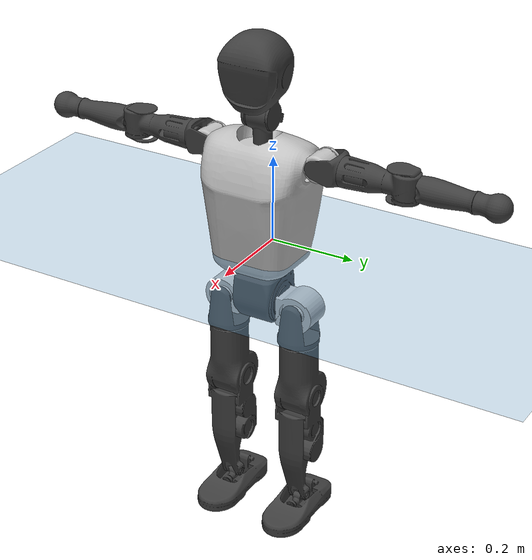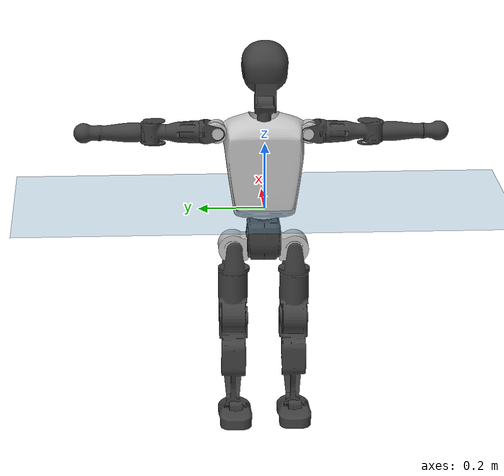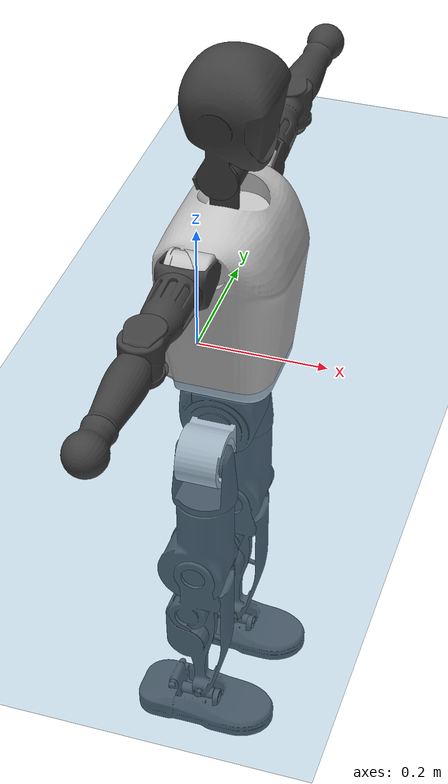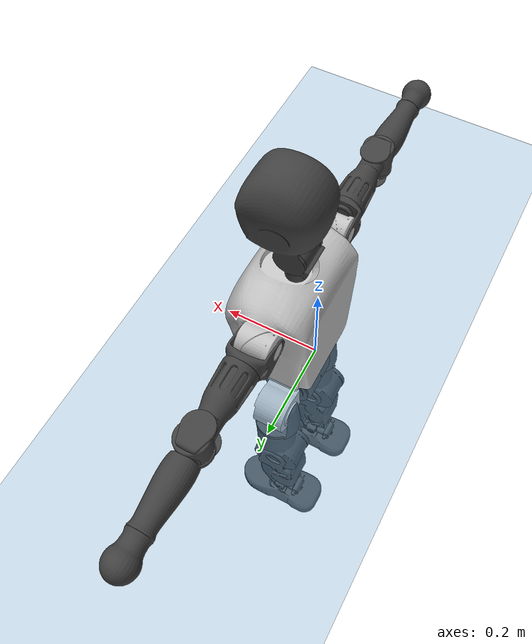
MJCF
<mujoco model="T1">
  <compiler angle="radian" assetdir="assets" balanceinertia="true" inertiafromgeom="false"/>

  <option timestep="0.005" density="1.2" viscosity="2e-05"/>

  <size nkey="1"/>

  <visual>
    <quality shadowsize="8192"/>
    <map shadowclip="0.5"/>
  </visual>

  <default>
    <default class="/">
      <joint armature="0.01" damping="0.01" frictionloss="0.1"/>
      <geom contype="0" conaffinity="0" group="1" solref="-1000 -80"/>
      <site size="0.01 0.005 0.005" group="5"/>
      <general forcelimited="true" biastype="affine" gainprm="25" biasprm="0 -25 -0.6"/>
      <default class="t1">
        <geom rgba="0.25 0.25 0.25 1"/>
        <default class="visual">
          <geom type="mesh" group="2"/>
        </default>
        <default class="collision">
          <geom group="3"/>
        </default>
        <default class="foot">
          <geom size="0.1115 0.05 0.015" type="box" condim="6" group="4" priority="1" solimp="0.015 1 0.015"/>
        </default>
        <default class="reward_collision_sphere">
          <geom group="5" rgba="1 0 0 1"/>
        </default>
      </default>
    </default>
  </default>

  <asset>
    <texture type="skybox" colorspace="auto" name="//unnamed_texture_0" builtin="gradient" rgb1="0.95 0.95 0.95" rgb2="0.95 0.95 0.95" width="100" height="600"/>
    <texture type="2d" colorspace="auto" name="texplane" builtin="checker" rgb1="0.345 0.575 0.748" rgb2="0.345 0.575 0.748" markrgb="1 1 1" width="512" height="512"/>
    <material name="MatPlane" class="/" texture="texplane" texuniform="true" texrepeat="2 2" specular="0.9"/>
    <mesh name="Trunk" class="/" file="Trunk.stl"/>
    <mesh name="H1" class="/" file="H1.stl"/>
    <mesh name="H2" class="/" file="H2.stl"/>
    <mesh name="AL1" class="/" file="AL1.stl"/>
    <mesh name="AL2" class="/" file="AL2.stl"/>
    <mesh name="AL3" class="/" file="AL3.stl"/>
    <mesh name="left_hand_link" class="/" file="left_hand_link.stl"/>
    <mesh name="AR1" class="/" file="AR1.stl"/>
    <mesh name="AR2" class="/" file="AR2.stl"/>
    <mesh name="AR3" class="/" file="AR3.stl"/>
    <mesh name="right_hand_link" class="/" file="right_hand_link.stl"/>
    <mesh name="Waist" class="/" file="Waist.stl"/>
    <mesh name="Hip_Pitch_Left" class="/" file="Hip_Pitch_Left.stl"/>
    <mesh name="Hip_Roll_Left" class="/" file="Hip_Roll_Left.stl"/>
    <mesh name="Hip_Yaw_Left" class="/" file="Hip_Yaw_Left.stl"/>
    <mesh name="Shank_Left" class="/" file="Shank_Left.stl"/>
    <mesh name="Ankle_Cross_Left" class="/" file="Ankle_Cross_Left.stl"/>
    <mesh name="left_foot_link" class="/" file="left_foot_link.stl"/>
    <mesh name="Hip_Pitch_Right" class="/" file="Hip_Pitch_Right.stl"/>
    <mesh name="Hip_Roll_Right" class="/" file="Hip_Roll_Right.stl"/>
    <mesh name="Hip_Yaw_Right" class="/" file="Hip_Yaw_Right.stl"/>
    <mesh name="Shank_Right" class="/" file="Shank_Right.stl"/>
    <mesh name="Ankle_Cross_Right" class="/" file="Ankle_Cross_Right.stl"/>
    <mesh name="right_foot_link" class="/" file="right_foot_link.stl"/>
  </asset>

  <worldbody>
    <geom name="floor" class="/" size="100 100 0.125" type="plane" group="0" material="MatPlane"/>
    <light name="toplight_shadow" class="/" pos="0 0 5" dir="0.0990148 0.0990148 -0.990148" type="directional" ambient="0.04 0.04 0.04" diffuse="0.55 0.55 0.55" specular="0.12 0.12 0.12"/>
    <light name="toplight_fill" class="/" pos="0 0 5" dir="0.0990148 0.0990148 -0.990148" type="directional" castshadow="false" ambient="0.04 0.04 0.04" diffuse="0.3 0.3 0.3" specular="0.08 0.08 0.08"/>
    <body name="trunk" childclass="t1" pos="-0.000985147 0.000552589 0.00281247" quat="1 0.000659969 0.000739227 0.000116035">
      <inertial pos="0.035203 -0.00284057 0.109879" quat="0.999965 0.00149109 -0.00797116 0.00186551" mass="7.34975" diaginertia="0.0159147 0.0372976 0.0645456"/>
      <joint name="//unnamed_joint_0" type="free" armature="0" damping="0" frictionloss="0"/>
      <geom name="//unnamed_geom_1" class="visual" rgba="0.76 0.76 0.76 1" mesh="Trunk"/>
      <geom name="//unnamed_geom_2" class="collision" size="0.0647953 0.0863937 0.129591" pos="0.0419514 0 0.123206" type="box"/>
      <geom name="//unnamed_geom_3" class="reward_collision_sphere" size="0.0993528" pos="0.0419514 0 0.102672"/>
      <geom name="//unnamed_geom_4" class="reward_collision_sphere" size="0.0129591" pos="0.0419514 0.0736017 0"/>
      <geom name="//unnamed_geom_5" class="reward_collision_sphere" size="0.0129591" pos="0.0419514 -0.0736017 0"/>
      <geom name="//unnamed_geom_6" class="reward_collision_sphere" size="0.0129591" pos="0.0419514 0.0926516 0.184809"/>
      <geom name="//unnamed_geom_7" class="reward_collision_sphere" size="0.0129591" pos="0.0419514 -0.0926516 0.184809"/>
      <site name="imu" pos="-0.00687623 0.0057642 -0.00750284" size="0.00863937"/>
      <camera name="track" pos="0 -1.7318 0" quat="0.707107 0.707107 0 0" mode="trackcom"/>
      <camera name="ego_camera" pos="0.0853012 0 0.431222" quat="-0.5 -0.5 0.5 0.5"/>
      <body name="H1" pos="0.0433534 -0.000653936 0.247619" quat="1 0.000607385 0.000254691 0.00050602">
        <inertial pos="-0.000834908 -0.00247491 0.0606737" quat="0.764312 -0.0143573 0.00296245 0.64468" mass="0.296695" diaginertia="4.00901e-05 0.000113683 0.000174459"/>
        <joint name="AAHead_yaw" pos="0 0 0" axis="0.00192248 -0.0133926 0.999908" range="-1.57642 1.58073" armature="0.00931137" damping="0.00131536" frictionloss="0.0870018"/>
        <geom name="//unnamed_geom_8" class="visual" mesh="H1"/>
        <body name="H2" pos="0.000160887 -0.00300556 0.0633012" quat="0.999999 -0.00124375 0.000170295 0.000400112">
          <inertial pos="0.00543595 -0.000186623 0.102268" quat="0.988415 0.106183 -0.0747367 -0.0785796" mass="0.40483" diaginertia="0.00033978 0.000953705 0.00204813"/>
          <joint name="Head_pitch" pos="0 0 0" axis="0.00462112 -0.999902 -0.0132163" stiffness="0.00943118" range="-1.22208 0.294385" armature="0.00965088" damping="0" frictionloss="0.0893916"/>
          <geom name="//unnamed_geom_9" class="visual" mesh="H2"/>
          <geom name="//unnamed_geom_10" class="collision" size="0.069115" pos="0.0069919 0 0.112939"/>
          <geom name="//unnamed_geom_11" class="reward_collision_sphere" size="0.0777543" pos="0.0139838 0 0.102672"/>
        </body>
      </body>
      <body name="AL1" pos="0.0418472 0.0952936 0.226714" quat="0.999999 -0.000883668 0.00143215 -0.000376202">
        <inertial pos="-0.0011213 0.041222 -0.000335503" quat="0.504616 0.49641 -0.503115 0.495798" mass="0.338086" diaginertia="0.00023705 0.000615218 0.000325872"/>
        <joint name="Left_Shoulder_Pitch" pos="0 0 0" axis="-0.000413879 0.999986 0.00526571" range="-3.25893 1.23907" armature="0.00805371" damping="0.00296853" frictionloss="0.0740735"/>
        <geom name="//unnamed_geom_12" class="visual" rgba="0.76 0.76 0.76 1" mesh="AL1"/>
        <body name="AL2" pos="-0.00201522 0.0443712 -0.000124834" quat="1 -0.000193393 4.71054e-05 0.000182142">
          <inertial pos="0.00180512 0.0320118 0.00183928" quat="0.485021 0.513217 -0.486304 0.514657" mass="0.109534" diaginertia="6.89141e-05 0.000170024 0.000215661"/>
          <joint name="Left_Shoulder_Roll" pos="0 0 0" axis="-0.999998 0.00120809 -0.00162584" stiffness="0.0103324" range="-1.54111 1.77073" armature="0.00811183" damping="0" frictionloss="0.085051"/>
          <geom name="//unnamed_geom_13" class="visual" mesh="AL2"/>
          <body name="AL3" pos="0.00334895 0.0538199 -0.00109462" quat="1 -0.000181846 -0.000421753 -0.000143621">
            <inertial pos="0.00252904 0.0740411 8.71932e-05" quat="0.705213 0.708875 0.0127919 0.00276728" mass="0.648004" diaginertia="0.00203228 0.00631328 0.000685432"/>
            <joint name="Left_Elbow_Pitch" pos="0 0 0" axis="-0.00267164 -0.999993 -0.00257288" stiffness="0.000216122" range="-2.24537 2.31959" armature="0.00841823" damping="0.0173913" frictionloss="0.0745348"/>
            <geom name="//unnamed_geom_14" class="visual" mesh="AL3"/>
            <geom name="//unnamed_geom_15" class="collision" size="0.0259181 0.0647953" pos="0 0.0432951 0" quat="0.707105 0.707108 0 0" type="cylinder"/>
            <geom name="//unnamed_geom_16" class="reward_collision_sphere" size="0.0311017"/>
            <body name="left_hand_link" pos="-0.0022591 0.130288 0.00164479" quat="0.999999 -0.000920524 -0.000532857 -0.000645468">
              <inertial pos="0.00101129 0.094782 0.00313305" quat="0.707902 0.70631 -0.000554694 -0.000547456" mass="0.212878" diaginertia="0.00142238 0.00411686 0.000250187"/>
              <joint name="Left_Elbow_Yaw" pos="0 0 0" axis="-0.00551649 -0.0091683 0.999943" range="-2.49381 -0.0184978" armature="0.00935042" damping="0.00669107" frictionloss="0.0742035"/>
              <geom name="//unnamed_geom_17" class="visual" mesh="left_hand_link"/>
              <geom name="//unnamed_geom_18" class="collision" size="0.0259181 0.0755945" pos="0 0.112567 0" quat="0.707105 0.707108 0 0" type="cylinder"/>
              <geom name="//unnamed_geom_19" class="reward_collision_sphere" size="0.0431968"/>
              <geom name="//unnamed_geom_20" class="reward_collision_sphere" size="0.0302378" pos="0 0.0952493 0"/>
              <geom name="//unnamed_geom_21" class="reward_collision_sphere" size="0.0302378" pos="0 0.186169 0"/>
            </body>
          </body>
        </body>
      </body>
      <body name="AR1" pos="0.0376636 -0.0879205 0.223986" quat="1 0.000271852 3.48515e-05 0.000291602">
        <inertial pos="-0.00224823 -0.0372929 0.00263061" quat="0.507098 0.495766 -0.502887 0.494138" mass="0.349632" diaginertia="0.000218566 0.000602168 0.000336013"/>
        <joint name="Right_Shoulder_Pitch" pos="0 0 0" axis="0.00350075 -0.99999 -0.00286659" stiffness="0.00311323" range="-1.22052 3.31549" armature="0.00827748" damping="0.01207" frictionloss="0.0744459"/>
        <geom name="//unnamed_geom_22" class="visual" rgba="0.76 0.76 0.76 1" mesh="AR1"/>
        <body name="AR2" pos="-0.00142986 -0.0411833 0.000189632" quat="1 -0.000168688 0.000610381 -6.07601e-05">
          <inertial pos="0.00436265 -0.0334527 0.00311496" quat="0.511281 0.489048 -0.512114 0.486994" mass="0.104621" diaginertia="6.62149e-05 0.000172413 0.000208777"/>
          <joint name="Right_Shoulder_Roll" pos="0 0 0" axis="-0.999814 0.0166235 0.00974551" range="-1.68365 1.59366" armature="0.00761669" damping="0.0197599" frictionloss="0.0850774"/>
          <geom name="//unnamed_geom_23" class="visual" mesh="AR2"/>
          <body name="AR3" pos="0.000504309 -0.0527053 -0.000983594" quat="1 7.4158e-05 9.14777e-05 2.03548e-05">
            <inertial pos="-0.000876386 -0.0754841 0.00243221" quat="0.701279 0.712818 0.00150787 0.00984214" mass="0.667947" diaginertia="0.00223473 0.00605622 0.000735512"/>
            <joint name="Right_Elbow_Pitch" pos="0 0 0" axis="-0.0030808 0.99991 -0.01302" stiffness="0.00405964" range="-2.21428 2.21603" armature="0.00874447" damping="0.0197076" frictionloss="0.0854407"/>
            <geom name="//unnamed_geom_24" class="visual" mesh="AR3"/>
            <geom name="//unnamed_geom_25" class="collision" size="0.0259181 0.0647953" pos="0 -0.0432951 0" quat="0.707105 0.707108 0 0" type="cylinder"/>
            <geom name="//unnamed_geom_26" class="reward_collision_sphere" size="0.0311017"/>
            <body name="right_hand_link" pos="-0.000264716 -0.127515 -0.00141133" quat="0.999999 0.000928365 0.00083407 0.000225258">
              <inertial pos="-0.000114479 -0.0948022 -0.00185307" quat="0.708173 0.706029 -0.00292211 0.00250789" mass="0.206247" diaginertia="0.0013784 0.00395489 0.000237025"/>
              <joint name="Right_Elbow_Yaw" pos="0 0 0" axis="-0.000540184 0.00110782 0.999999" stiffness="0.000406018" range="-0.00960281 2.43195" armature="0.00826328" damping="0" frictionloss="0.0985117"/>
              <geom name="//unnamed_geom_27" class="visual" mesh="right_hand_link"/>
              <geom name="//unnamed_geom_28" class="collision" size="0.0259181 0.0755945" pos="0 -0.112567 0" quat="0.707105 0.707108 0 0" type="cylinder"/>
              <geom name="//unnamed_geom_29" class="reward_collision_sphere" size="0.0431968"/>
              <geom name="//unnamed_geom_30" class="reward_collision_sphere" size="0.0302378" pos="0 -0.0952493 0"/>
              <geom name="//unnamed_geom_31" class="reward_collision_sphere" size="0.0302378" pos="0 -0.186169 0"/>
            </body>
          </body>
        </body>
      </body>
      <body name="Waist" pos="0.043861 0.00104163 -0.11838" quat="0.999999 0.000669594 -0.000601273 -0.000958743">
        <inertial pos="0.00102144 0.0020868 0.00773316" quat="0.984204 -0.000882297 -0.176946 0.0056468" mass="1.59975" diaginertia="0.000867184 0.0024922 0.00546581"/>
        <joint name="Waist" pos="0 0 0" axis="-0.00192336 0.00361652 0.999992" stiffness="0.00771427" range="-1.53647 1.5369" armature="0.00751455" damping="0.016442" frictionloss="0.0864435"/>
        <geom name="//unnamed_geom_32" class="visual" mesh="Waist"/>
        <body name="Hip_Pitch_Left" pos="-0.000525633 0.0937959 0.00248742" quat="1 0.00025047 -6.98223e-05 -4.9701e-05">
          <inertial pos="-0.00220041 -0.00518484 -0.0176502" quat="0.975105 0.221004 0.0174901 0.00473239" mass="0.670251" diaginertia="0.000297881 0.000692754 0.00143282"/>
          <joint name="Left_Hip_Pitch" pos="0 0 0" axis="-0.000222748 1 0.000275847" range="-1.82375 1.55703" armature="0.00741525" damping="0.0158881" frictionloss="0.0910379"/>
          <geom name="//unnamed_geom_33" class="visual" rgba="0.76 0.76 0.76 1" mesh="Hip_Pitch_Left"/>
          <body name="Hip_Roll_Left" pos="0.00159774 -0.00342269 -0.021272" quat="1 1.4143e-05 -0.000207103 -1.05785e-05">
            <inertial pos="0.00350612 -0.00270732 -0.0565724" quat="0.709071 -0.006655 -0.00942087 0.705043" mass="0.243025" diaginertia="0.000295393 0.000739954 0.00059747"/>
            <joint name="Left_Hip_Roll" pos="0 0 0" axis="-0.999977 -0.0024537 0.00635248" range="-1.56491 0.19" armature="0.00970918" damping="0.0200521" frictionloss="0.0858104"/>
            <geom name="//unnamed_geom_34" class="visual" mesh="Hip_Roll_Left"/>
            <geom name="//unnamed_geom_35" class="reward_collision_sphere" size="0.0475165"/>
            <body name="Hip_Yaw_Left" pos="0.00116013 0.00251572 -0.0819608" quat="1 0.000171355 0.000363913 -0.000202983">
              <inertial pos="-0.00545086 4.82251e-06 -0.0900845" quat="0.692513 -0.0327097 -0.0335554 0.719882" mass="1.42154" diaginertia="0.00435835 0.0124857 0.00297961"/>
              <joint name="Left_Hip_Yaw" pos="0 0 0" axis="0.00358788 0.00439589 -0.999984" stiffness="0.00825766" range="-0.980404 1.01971" armature="0.00853363" damping="0" frictionloss="0.0985616"/>
              <geom name="//unnamed_geom_36" class="visual" mesh="Hip_Yaw_Left"/>
              <geom name="//unnamed_geom_37" class="collision" size="0.0431968 0.069115" type="cylinder"/>
              <body name="Shank_Left" pos="-0.0101099 -0.00144368 -0.141056" quat="0.999999 0.00122244 0.00035218 -0.000452192">
                <inertial pos="-0.00394193 -0.00247669 -0.125428" quat="0.996967 0.00560476 -0.0258137 0.0732121" mass="1.10523" diaginertia="0.00573007 0.0172669 0.00209977"/>
                <joint name="Left_Knee_Pitch" pos="0 0 0" axis="0.0172907 0.999847 0.00249356" stiffness="0.000152785" range="0.00571727 2.29711" armature="0.00986942" damping="0" frictionloss="0.0873455"/>
                <geom name="//unnamed_geom_38" class="visual" mesh="Shank_Left"/>
                <geom name="//unnamed_geom_39" class="collision" size="0.0431968 0.0647953" pos="0 0 -0.123206" type="cylinder"/>
                <geom name="//unnamed_geom_40" class="reward_collision_sphere" size="0.0561559"/>
                <body name="Ankle_Cross_Left" pos="0.00258596 -0.00306009 -0.288858" quat="0.999999 0.00061103 0.00109269 -0.000488214">
                  <inertial pos="-0.00173483 -0.0010907 -0.00660636" quat="0.453939 0.551735 0.545138 0.43858" mass="0.0459322" diaginertia="5.05805e-06 1.26498e-05 1.31405e-05"/>
                  <joint name="Left_Ankle_Pitch" pos="0 0 0" axis="3.24177e-05 1 0.000567382" stiffness="0.00673321" range="-0.891825 0.37574" armature="0.00991477" damping="0.0088821" frictionloss="0.0986075"/>
                  <geom name="//unnamed_geom_41" class="visual" mesh="Ankle_Cross_Left"/>
                  <body name="left_foot_link" pos="-0.00320553 -0.00290247 -0.0143065" quat="1 0.000583414 7.27348e-05 -6.9925e-05">
                    <inertial pos="-0.00134897 0.00101158 -0.0103597" quat="0.00644554 0.627599 -0.00635718 0.778484" mass="0.444457" diaginertia="0.000437074 0.00115062 0.00251347"/>
                    <joint name="Left_Ankle_Roll" pos="0 0 0" axis="-0.999948 -0.00987849 0.00237834" stiffness="0.0032254" range="-0.447096 0.460102" armature="0.00874488" damping="0.00951645" frictionloss="0.0866521"/>
                    <geom name="//unnamed_geom_42" class="visual" mesh="left_foot_link"/>
                    <geom name="left_foot" class="foot" size="0.102732 0.0422399 0.0129191" pos="0.0069919 0 -0.0154008"/>
                    <geom name="//unnamed_geom_44" class="reward_collision_sphere" size="0.0449247" pos="0.0069919 0 -0.0154008"/>
                    <geom name="//unnamed_geom_45" class="reward_collision_sphere" size="0.0259181" pos="0.0664231 -0.0199158 -0.0154008"/>
                    <geom name="//unnamed_geom_46" class="reward_collision_sphere" size="0.0259181" pos="-0.0489433 -0.0199158 -0.0154008"/>
                    <site name="left_foot" class="foot" pos="0.0069919 0 -0.0154008" size="0.00863937"/>
                  </body>
                </body>
              </body>
            </body>
          </body>
        </body>
        <body name="Hip_Pitch_Right" pos="-0.00157144 -0.0924159 3.90539e-05" quat="1 0.000484773 -0.00076562 0.000328368">
          <inertial pos="-0.00192751 0.00627261 -0.0208824" quat="0.97266 -0.231647 0.016475 -0.0012031" mass="0.634351" diaginertia="0.000298934 0.00073006 0.00137986"/>
          <joint name="Right_Hip_Pitch" pos="0 0 0" axis="-0.00240607 -0.999991 -0.00345862" range="-1.59038 1.74213" armature="0.0095138" damping="0.00885589" frictionloss="0.0874139"/>
          <geom name="//unnamed_geom_47" class="visual" rgba="0.76 0.76 0.76 1" mesh="Hip_Pitch_Right"/>
          <body name="Hip_Roll_Right" pos="0.0020511 -0.00125277 -0.0217424" quat="1 -0.000298482 -0.00029957 -0.000436106">
            <inertial pos="0.00149855 0.00265491 -0.0552045" quat="0.710139 -0.0111042 0.00540723 0.703953" mass="0.242761" diaginertia="0.00029074 0.000736184 0.000577581"/>
            <joint name="Right_Hip_Roll" pos="0 0 0" axis="-0.999902 0.00631213 -0.0125286" stiffness="0.0147645" range="-0.20047 1.55902" armature="0.00729777" damping="0.00816149" frictionloss="0.0881548"/>
            <geom name="//unnamed_geom_48" class="visual" mesh="Hip_Roll_Right"/>
            <geom name="//unnamed_geom_49" class="reward_collision_sphere" size="0.0475165"/>
            <body name="Hip_Yaw_Right" pos="-0.00217242 -6.12662e-05 -0.0840182" quat="1 -0.000118135 -0.00019843 -0.000274069">
              <inertial pos="-0.00764714 7.98688e-05 -0.092454" quat="0.720085 -0.0240539 -0.0386914 0.692389" mass="1.44302" diaginertia="0.00427599 0.0122528 0.00294152"/>
              <joint name="Right_Hip_Yaw" pos="0 0 0" axis="-0.000446418 0.00558495 -0.999984" range="-0.963186 0.946185" armature="0.00822693" damping="0" frictionloss="0.0874005"/>
              <geom name="//unnamed_geom_50" class="visual" mesh="Hip_Yaw_Right"/>
              <geom name="//unnamed_geom_51" class="collision" size="0.0431968 0.069115" type="cylinder"/>
              <body name="Shank_Right" pos="-0.00810144 0.00186656 -0.134541" quat="1 -1.03446e-05 0.000277074 -0.000113444">
                <inertial pos="-0.00380014 0.000633828 -0.128452" quat="0.999386 0.00288906 -0.0281799 -0.0206263" mass="1.08198" diaginertia="0.00571256 0.0169545 0.00217811"/>
                <joint name="Right_Knee_Pitch" pos="0 0 0" axis="-0.0019044 -0.999973 -0.00708029" stiffness="0.000958184" range="-2.32747 -0.00130662" armature="0.00977614" damping="0" frictionloss="0.0973652"/>
                <geom name="//unnamed_geom_52" class="visual" mesh="Shank_Right"/>
                <geom name="//unnamed_geom_53" class="collision" size="0.0431968 0.0647953" pos="0 0 -0.123206" type="cylinder"/>
                <geom name="//unnamed_geom_54" class="reward_collision_sphere" size="0.0561559"/>
                <body name="Ankle_Cross_Right" pos="-0.00281208 -0.00143754 -0.287078" quat="1 -0.000235813 -0.000631614 -0.000194333">
                  <inertial pos="-0.00306472 0.00071543 -0.00777061" quat="0.441496 0.551735 0.550138 0.444993" mass="0.0466349" diaginertia="4.73596e-06 1.24125e-05 1.26299e-05"/>
                  <joint name="Right_Ankle_Pitch" pos="0 0 0" axis="-0.00103339 -0.999968 0.00795612" stiffness="0.00413493" range="-0.403732 0.889688" armature="0.00909209" damping="0.0205843" frictionloss="0.0864299"/>
                  <geom name="//unnamed_geom_55" class="visual" mesh="Ankle_Cross_Right"/>
                  <body name="right_foot_link" pos="0.000522752 -0.00179321 -0.0146536" quat="0.999999 -0.0011805 -0.000354022 -0.000175904">
                    <inertial pos="-0.00266698 -2.72795e-05 -0.00918747" quat="-0.00786037 0.620302 0.000390654 0.784323" mass="0.442413" diaginertia="0.000443264 0.00111997 0.00243415"/>
                    <joint name="Right_Ankle_Roll" pos="0 0 0" axis="-0.99999 -0.00411371 -0.00186937" stiffness="0.00866442" range="-0.382873 0.38566" armature="0.00929099" damping="0.00558553" frictionloss="0.089392"/>
                    <geom name="//unnamed_geom_56" class="visual" mesh="right_foot_link"/>
                    <geom name="right_foot" class="foot" size="0.092401 0.0424606 0.0132858" pos="0.0069919 0 -0.0154008"/>
                    <geom name="//unnamed_geom_58" class="reward_collision_sphere" size="0.0345575"/>
                    <geom name="//unnamed_geom_59" class="reward_collision_sphere" size="0.0259181" pos="0.0069919 0 -0.0154008"/>
                    <geom name="//unnamed_geom_60" class="reward_collision_sphere" size="0.0259181" pos="0.0664231 0.0199158 -0.0154008"/>
                    <geom name="//unnamed_geom_61" class="reward_collision_sphere" size="0.0259181" pos="-0.0489433 0.0199158 -0.0154008"/>
                    <site name="right_foot" class="foot" pos="0.0069919 0 -0.0154008" size="0.00863937"/>
                  </body>
                </body>
              </body>
            </body>
          </body>
        </body>
      </body>
    </body>
  </worldbody>

  <contact>
    <pair class="/" geom1="floor" geom2="left_foot" name="//unnamed_contact_0"/>
    <pair class="/" geom1="floor" geom2="right_foot" name="//unnamed_contact_1"/>
  </contact>

  <actuator>
    <general name="AAHead_yaw" class="/" joint="AAHead_yaw" forcerange="-5.7006 5.7006" gainprm="20.8976" biasprm="0 -20.8976 -0.476987"/>
    <general name="Head_pitch" class="/" joint="Head_pitch" forcerange="-6.24554 6.24554" gainprm="20.8976" biasprm="0 -20.8976 -0.476987"/>
    <general name="Left_Shoulder_Pitch" class="/" joint="Left_Shoulder_Pitch" forcerange="-15.0959 15.0959" gainprm="20.8976" biasprm="0 -20.8976 -0.476987"/>
    <general name="Left_Shoulder_Roll" class="/" joint="Left_Shoulder_Roll" forcerange="-13.879 13.879" gainprm="20.8976" biasprm="0 -20.8976 -0.476987"/>
    <general name="Left_Elbow_Pitch" class="/" joint="Left_Elbow_Pitch" forcerange="-14.9619 14.9619" gainprm="20.8976" biasprm="0 -20.8976 -0.476987"/>
    <general name="Left_Elbow_Yaw" class="/" joint="Left_Elbow_Yaw" forcerange="-16.6929 16.6929" gainprm="20.8976" biasprm="0 -20.8976 -0.476987"/>
    <general name="Right_Shoulder_Pitch" class="/" joint="Right_Shoulder_Pitch" forcerange="-16.5486 16.5486" gainprm="20.8976" biasprm="0 -20.8976 -0.476987"/>
    <general name="Right_Shoulder_Roll" class="/" joint="Right_Shoulder_Roll" forcerange="-14.2234 14.2234" gainprm="20.8976" biasprm="0 -20.8976 -0.476987"/>
    <general name="Right_Elbow_Pitch" class="/" joint="Right_Elbow_Pitch" forcerange="-15.6715 15.6715" gainprm="20.8976" biasprm="0 -20.8976 -0.476987"/>
    <general name="Right_Elbow_Yaw" class="/" joint="Right_Elbow_Yaw" forcerange="-15.8147 15.8147" gainprm="20.8976" biasprm="0 -20.8976 -0.476987"/>
    <general name="Waist" class="/" joint="Waist" forcerange="-26.8817 26.8817" gainprm="20.8976" biasprm="0 -20.8976 -0.476987"/>
    <general name="Left_Hip_Pitch" class="/" joint="Left_Hip_Pitch" forcerange="-35.5459 35.5459" gainprm="20.8976" biasprm="0 -20.8976 -0.476987"/>
    <general name="Left_Hip_Roll" class="/" joint="Left_Hip_Roll" forcerange="-27.5217 27.5217" gainprm="20.8976" biasprm="0 -20.8976 -0.476987"/>
    <general name="Left_Hip_Yaw" class="/" joint="Left_Hip_Yaw" forcerange="-24.9561 24.9561" gainprm="20.8976" biasprm="0 -20.8976 -0.476987"/>
    <general name="Left_Knee_Pitch" class="/" joint="Left_Knee_Pitch" forcerange="-49.7263 49.7263" gainprm="20.8976" biasprm="0 -20.8976 -0.476987"/>
    <general name="Left_Ankle_Pitch" class="/" joint="Left_Ankle_Pitch" forcerange="-17.3419 17.3419" gainprm="20.8976" biasprm="0 -20.8976 -0.476987"/>
    <general name="Left_Ankle_Roll" class="/" joint="Left_Ankle_Roll" forcerange="-12.9605 12.9605" gainprm="20.8976" biasprm="0 -20.8976 -0.476987"/>
    <general name="Right_Hip_Pitch" class="/" joint="Right_Hip_Pitch" forcerange="-41.1984 41.1984" gainprm="20.8976" biasprm="0 -20.8976 -0.476987"/>
    <general name="Right_Hip_Roll" class="/" joint="Right_Hip_Roll" forcerange="-25.6913 25.6913" gainprm="20.8976" biasprm="0 -20.8976 -0.476987"/>
    <general name="Right_Hip_Yaw" class="/" joint="Right_Hip_Yaw" forcerange="-28.6074 28.6074" gainprm="20.8976" biasprm="0 -20.8976 -0.476987"/>
    <general name="Right_Knee_Pitch" class="/" joint="Right_Knee_Pitch" forcerange="-51.4044 51.4044" gainprm="20.8976" biasprm="0 -20.8976 -0.476987"/>
    <general name="Right_Ankle_Pitch" class="/" joint="Right_Ankle_Pitch" forcerange="-15.9014 15.9014" gainprm="20.8976" biasprm="0 -20.8976 -0.476987"/>
    <general name="Right_Ankle_Roll" class="/" joint="Right_Ankle_Roll" forcerange="-13.0351 13.0351" gainprm="20.8976" biasprm="0 -20.8976 -0.476987"/>
  </actuator>

  <sensor>
    <gyro site="imu" name="imu_angular_velocity"/>
    <velocimeter site="imu" name="imu_linear_velocity"/>
    <framelinvel objtype="site" objname="left_foot" name="left_foot_global_linear_velocity"/>
    <framelinvel objtype="site" objname="right_foot" name="right_foot_global_linear_velocity"/>
  </sensor>

  <keyframe>
    <key name="home" qpos="0 0 0.6385 1 0 0 0 0 0 0 1.4 0 -0.4 0 -1.4 0 0.4 0 -0.4 0 0 0.8 -0.4 0 0.4 0 0 -0.8 0.4 0"/>
  </keyframe>
</mujoco>
